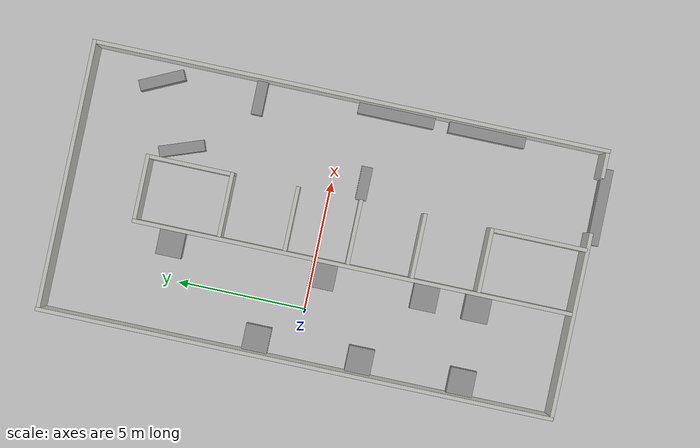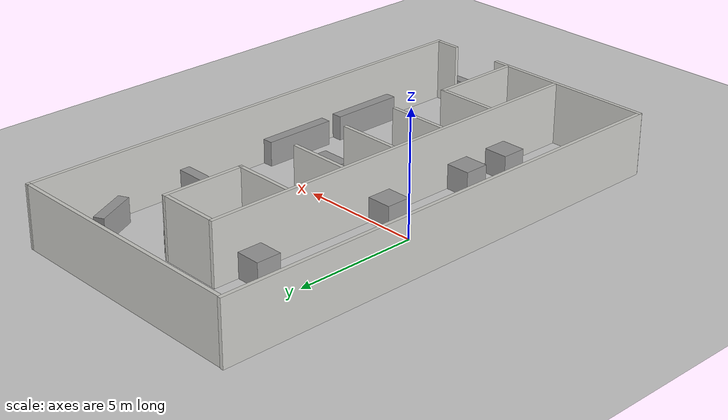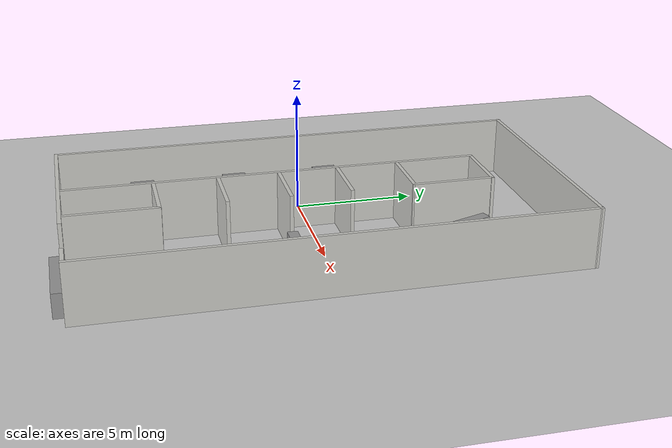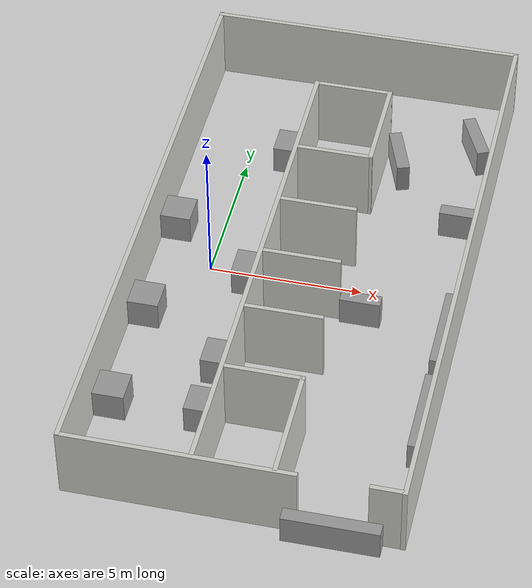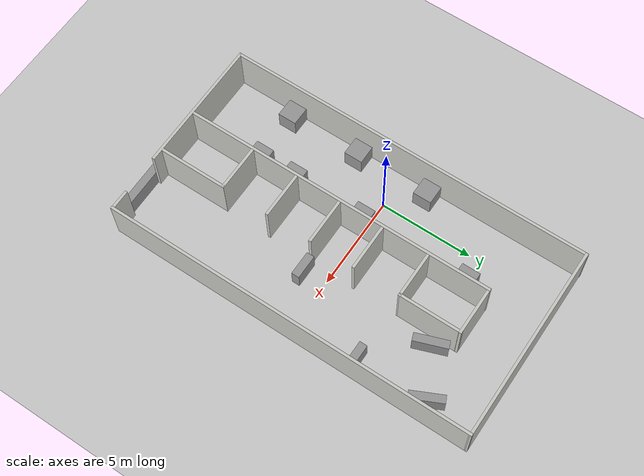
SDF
<sdf version="1.7">
 <world name="default">
  <light name="sun" type="directional">
   <pose>0 0 10 0 -0 0</pose>
   <diffuse>0.8 0.8 0.8 1</diffuse>
   <specular>0.2 0.2 0.2 1</specular>
   <attenuation>
    <range>1000</range>
    <constant>0.9</constant>
    <linear>0.01</linear>
    <quadratic>0.001</quadratic>
   </attenuation>
   <direction>-0.5 0.1 -0.9</direction>
   <spot><inner_angle>0</inner_angle><outer_angle>0</outer_angle><falloff>0</falloff></spot>
  </light>
  <model name="ground_plane">
   <static>1</static>
   <link name="link">
    <collision name="collision">
     <geometry><plane><normal>0 0 1</normal><size>100 100</size></plane></geometry>
     <surface>
      <contact><collide_bitmask>65535</collide_bitmask></contact>
      <friction><ode><mu>100</mu><mu2>50</mu2></ode></friction>
     </surface>
    </collision>
    <visual name="visual">
     <cast_shadows>0</cast_shadows>
     <geometry><plane><normal>0 0 1</normal><size>100 100</size></plane></geometry>
     <material>
      <script><uri>file://media/materials/scripts/gazebo.material</uri><name>Gazebo/Grey</name></script>
     </material>
    </visual>
   </link>
  </model>
  <gravity>0 0 -9.8</gravity>
  <magnetic_field>6e-06 2.3e-05 -4.2e-05</magnetic_field>
  <atmosphere type="adiabatic"/>
  <physics type="ode">
   <max_step_size>0.001</max_step_size>
   <real_time_factor>1</real_time_factor>
   <real_time_update_rate>1000</real_time_update_rate>
  </physics>
  <scene><ambient>0.4 0.4 0.4 1</ambient><background>0.7 0.7 0.7 1</background><shadows>1</shadows></scene>
  <audio><device>default</device></audio>
  <spherical_coordinates>
   <surface_model>EARTH_WGS84</surface_model>
   <latitude_deg>0</latitude_deg>
   <longitude_deg>0</longitude_deg>
   <elevation>0</elevation>
   <heading_deg>0</heading_deg>
  </spherical_coordinates>
  <model name="game_room">
   <pose>3.13909 -0.042829 0 0 -0 0</pose>
   <link name="Wall_14">
    <collision name="Wall_14_Collision">
     <geometry><box><size>20 0.15 2.5</size></box></geometry>
     <pose>0 0 1.25 0 -0 0</pose>
    </collision>
    <visual name="Wall_14_Visual">
     <pose>0 0 1.25 0 -0 0</pose>
     <geometry><box><size>20 0.15 2.5</size></box></geometry>
     <material>
      <script><uri>file://media/materials/scripts/gazebo.material</uri><name>Gazebo/CeilingTiled</name></script>
      <ambient>1 1 1 1</ambient>
     </material>
     <meta><layer>0</layer></meta>
    </visual>
    <pose>-5.16855 0.008499 0 0 -0 -1.5708</pose>
   </link>
   <link name="Wall_29">
    <collision name="Wall_29_Collision">
     <geometry><box><size>17 0.15 2.5</size></box></geometry>
     <pose>0 0 1.25 0 -0 0</pose>
    </collision>
    <visual name="Wall_29_Visual">
     <pose>0 0 1.25 0 -0 0</pose>
     <geometry><box><size>17 0.15 2.5</size></box></geometry>
     <material>
      <script><uri>file://media/materials/scripts/gazebo.material</uri><name>Gazebo/CeilingTiled</name></script>
      <ambient>1 1 1 1</ambient>
     </material>
     <meta><layer>0</layer></meta>
    </visual>
    <pose>-1.14655 -1.3685 0 0 -0 1.5708</pose>
   </link>
   <link name="Wall_31">
    <collision name="Wall_31_Collision">
     <geometry><box><size>2.5 0.15 2.5</size></box></geometry>
     <pose>0 0 1.25 0 -0 0</pose>
    </collision>
    <visual name="Wall_31_Visual">
     <pose>0 0 1.25 0 -0 0</pose>
     <geometry><box><size>2.5 0.15 2.5</size></box></geometry>
     <material>
      <script><uri>file://media/materials/scripts/gazebo.material</uri><name>Gazebo/CeilingTiled</name></script>
      <ambient>1 1 1 1</ambient>
     </material>
     <meta><layer>0</layer></meta>
    </visual>
    <pose>0.166446 -6.2425 0 0 -0 3.14159</pose>
   </link>
   <link name="Wall_33">
    <collision name="Wall_33_Collision">
     <geometry><box><size>2.5 0.15 2.5</size></box></geometry>
     <pose>0 0 1.25 0 -0 0</pose>
    </collision>
    <visual name="Wall_33_Visual">
     <pose>0 0 1.25 0 -0 0</pose>
     <geometry><box><size>2.5 0.15 2.5</size></box></geometry>
     <material>
      <script><uri>file://media/materials/scripts/gazebo.material</uri><name>Gazebo/CeilingTiled</name></script>
      <ambient>1 1 1 1</ambient>
     </material>
     <meta><layer>0</layer></meta>
    </visual>
    <pose>0.169446 -3.6585 0 0 -0 3.14159</pose>
   </link>
   <link name="Wall_35">
    <collision name="Wall_35_Collision">
     <geometry><box><size>2.5 0.15 2.5</size></box></geometry>
     <pose>0 0 1.25 0 -0 0</pose>
    </collision>
    <visual name="Wall_35_Visual">
     <pose>0 0 1.25 0 -0 0</pose>
     <geometry><box><size>2.5 0.15 2.5</size></box></geometry>
     <material>
      <script><uri>file://media/materials/scripts/gazebo.material</uri><name>Gazebo/CeilingTiled</name></script>
      <ambient>1 1 1 1</ambient>
     </material>
     <meta><layer>0</layer></meta>
    </visual>
    <pose>0.180446 -1.1755 0 0 -0 0</pose>
   </link>
   <link name="Wall_37">
    <collision name="Wall_37_Collision">
     <geometry><box><size>2.5 0.15 2.5</size></box></geometry>
     <pose>0 0 1.25 0 -0 0</pose>
    </collision>
    <visual name="Wall_37_Visual">
     <pose>0 0 1.25 0 -0 0</pose>
     <geometry><box><size>2.5 0.15 2.5</size></box></geometry>
     <material>
      <script><uri>file://media/materials/scripts/gazebo.material</uri><name>Gazebo/CeilingTiled</name></script>
      <ambient>1 1 1 1</ambient>
     </material>
     <meta><layer>0</layer></meta>
    </visual>
    <pose>0.171446 1.2535 0 0 -0 0</pose>
   </link>
   <link name="Wall_39">
    <collision name="Wall_39_Collision">
     <geometry><box><size>2.5 0.15 2.5</size></box></geometry>
     <pose>0 0 1.25 0 -0 0</pose>
    </collision>
    <visual name="Wall_39_Visual">
     <pose>0 0 1.25 0 -0 0</pose>
     <geometry><box><size>2.5 0.15 2.5</size></box></geometry>
     <material>
      <script><uri>file://media/materials/scripts/gazebo.material</uri><name>Gazebo/CeilingTiled</name></script>
      <ambient>1 1 1 1</ambient>
     </material>
     <meta><layer>0</layer></meta>
    </visual>
    <pose>0.174446 3.79326 0 0 -0 0.0002</pose>
   </link>
   <link name="Wall_43">
    <collision name="Wall_43_Collision">
     <geometry><box><size>3.75 0.15 2.5</size></box></geometry>
     <pose>0 0 1.25 0 -0 0</pose>
    </collision>
    <visual name="Wall_43_Visual">
     <pose>0 0 1.25 0 -0 0</pose>
     <geometry><box><size>3.75 0.15 2.5</size></box></geometry>
     <material>
      <script><uri>file://media/materials/scripts/gazebo.material</uri><name>Gazebo/CeilingTiled</name></script>
      <ambient>1 1 1 1</ambient>
     </material>
     <meta><layer>0</layer></meta>
    </visual>
    <pose>1.34145 -8.0495 0 0 -0 -1.5708</pose>
   </link>
   <link name="Wall_45">
    <collision name="Wall_45_Collision">
     <geometry><box><size>2.5 0.15 2.5</size></box></geometry>
     <pose>0 0 1.25 0 -0 0</pose>
    </collision>
    <visual name="Wall_45_Visual">
     <pose>0 0 1.25 0 -0 0</pose>
     <geometry><box><size>2.5 0.15 2.5</size></box></geometry>
     <material>
      <script><uri>file://media/materials/scripts/gazebo.material</uri><name>Gazebo/CeilingTiled</name></script>
      <ambient>1 1 1 1</ambient>
     </material>
     <meta><layer>0</layer></meta>
    </visual>
    <pose>0.179359 7.05532 0 0 -0 0.000156</pose>
   </link>
   <link name="Wall_50">
    <collision name="Wall_50_Collision">
     <geometry><box><size>10.4848 0.15 2.5</size></box></geometry>
     <pose>0 0 1.25 0 -0 0</pose>
    </collision>
    <visual name="Wall_50_Visual">
     <pose>0 0 1.25 0 -0 0</pose>
     <geometry><box><size>10.4848 0.15 2.5</size></box></geometry>
     <material>
      <script><uri>file://media/materials/scripts/gazebo.material</uri><name>Gazebo/CeilingTiled</name></script>
      <ambient>1 1 1 1</ambient>
     </material>
     <meta><layer>0</layer></meta>
    </visual>
    <pose>0.001064 9.919 0 0 -0 -3.14014</pose>
   </link>
   <link name="Wall_54">
    <collision name="Wall_54_Collision">
     <geometry><box><size>7.25 0.15 2.5</size></box></geometry>
     <pose>0 0 1.25 0 -0 0</pose>
    </collision>
    <visual name="Wall_54_Visual">
     <pose>0 0 1.25 0 -0 0</pose>
     <geometry><box><size>7.25 0.15 2.5</size></box></geometry>
     <material>
      <script><uri>file://media/materials/scripts/gazebo.material</uri><name>Gazebo/CeilingTiled</name></script>
      <ambient>1 1 1 1</ambient>
     </material>
     <meta><layer>0</layer></meta>
    </visual>
    <pose>-1.61255 -9.9335 0 0 -0 0</pose>
   </link>
   <link name="Wall_64">
    <collision name="Wall_64_Collision">
     <geometry><box><size>3.41211 0.15 2.5</size></box></geometry>
     <pose>0 0 1.25 0 -0 0</pose>
    </collision>
    <visual name="Wall_64_Visual">
     <pose>0 0 1.25 0 -0 0</pose>
     <geometry><box><size>3.41211 0.15 2.5</size></box></geometry>
     <material>
      <script><uri>file://media/materials/scripts/gazebo.material</uri><name>Gazebo/CeilingTiled</name></script>
      <ambient>1 1 1 1</ambient>
     </material>
     <meta><layer>0</layer></meta>
    </visual>
    <pose>1.35195 5.4245 0 0 -0 -1.57233</pose>
   </link>
   <link name="Wall_68">
    <collision name="Wall_68_Collision">
     <geometry><box><size>20 0.15 2.5</size></box></geometry>
     <pose>0 0 1.25 0 -0 0</pose>
    </collision>
    <visual name="Wall_68_Visual">
     <pose>0 0 1.25 0 -0 0</pose>
     <geometry><box><size>20 0.15 2.5</size></box></geometry>
     <material>
      <script><uri>file://media/materials/scripts/gazebo.material</uri><name>Gazebo/CeilingTiled</name></script>
      <ambient>1 1 1 1</ambient>
     </material>
     <meta><layer>0</layer></meta>
    </visual>
    <pose>5.16845 0.001499 0 0 -0 -1.5708</pose>
   </link>
   <link name="Wall_72">
    <collision name="Wall_72_Collision">
     <geometry><box><size>1 0.15 2.5</size></box></geometry>
     <pose>0 0 1.25 0 -0 0</pose>
    </collision>
    <visual name="Wall_72_Visual">
     <pose>0 0 1.25 0 -0 0</pose>
     <geometry><box><size>1 0.15 2.5</size></box></geometry>
     <material>
      <script><uri>file://media/materials/scripts/gazebo.material</uri><name>Gazebo/CeilingTiled</name></script>
      <ambient>1 1 1 1</ambient>
     </material>
     <meta><layer>0</layer></meta>
    </visual>
    <pose>4.61945 -9.9085 0 0 -0 0</pose>
   </link>
   <static>1</static>
  </model>
  <model name="unit_box">
   <pose>-1.45447 -6.45285 0.499995 0 -1e-05 -1.9e-05</pose>
   <link name="link">
    <inertial>
     <mass>1</mass>
     <inertia>
      <ixx>0.166667</ixx>
      <ixy>0</ixy>
      <ixz>0</ixz>
      <iyy>0.166667</iyy>
      <iyz>0</iyz>
      <izz>0.166667</izz>
     </inertia>
    </inertial>
    <collision name="collision"><geometry><box><size>1 1 1</size></box></geometry></collision>
    <visual name="visual">
     <geometry><box><size>1 1 1</size></box></geometry>
     <material>
      <script><name>Gazebo/Grey</name><uri>file://media/materials/scripts/gazebo.material</uri></script>
     </material>
    </visual>
   </link>
  </model>
  <model name="unit_box_clone">
   <pose>1.41204 -6.44415 0.499995 0 1e-05 0</pose>
   <link name="link">
    <inertial>
     <mass>1</mass>
     <inertia>
      <ixx>0.166667</ixx>
      <ixy>0</ixy>
      <ixz>0</ixz>
      <iyy>0.166667</iyy>
      <iyz>0</iyz>
      <izz>0.166667</izz>
     </inertia>
    </inertial>
    <collision name="collision"><geometry><box><size>1 1 1</size></box></geometry></collision>
    <visual name="visual">
     <geometry><box><size>1 1 1</size></box></geometry>
     <material>
      <script><name>Gazebo/Grey</name><uri>file://media/materials/scripts/gazebo.material</uri></script>
     </material>
    </visual>
   </link>
  </model>
  <model name="unit_box_clone_0_clone">
   <pose>1.41754 -4.40514 0.499995 0 1e-05 -3e-06</pose>
   <link name="link">
    <inertial>
     <mass>1</mass>
     <inertia>
      <ixx>0.166667</ixx>
      <ixy>0</ixy>
      <ixz>0</ixz>
      <iyy>0.166667</iyy>
      <iyz>0</iyz>
      <izz>0.166667</izz>
     </inertia>
    </inertial>
    <collision name="collision"><geometry><box><size>1 1 1</size></box></geometry></collision>
    <visual name="visual">
     <geometry><box><size>1 1 1</size></box></geometry>
     <material>
      <script><name>Gazebo/Grey</name><uri>file://media/materials/scripts/gazebo.material</uri></script>
     </material>
    </visual>
   </link>
  </model>
  <model name="unit_box_clone_0_clone_clone_clone">
   <pose>-1.45445 -2.46074 0.499995 -1e-05 -0 -1.5e-05</pose>
   <link name="link">
    <inertial>
     <mass>1</mass>
     <inertia>
      <ixx>0.166667</ixx>
      <ixy>0</ixy>
      <ixz>0</ixz>
      <iyy>0.166667</iyy>
      <iyz>0</iyz>
      <izz>0.166667</izz>
     </inertia>
    </inertial>
    <collision name="collision"><geometry><box><size>1 1 1</size></box></geometry></collision>
    <visual name="visual">
     <geometry><box><size>1 1 1</size></box></geometry>
     <material>
      <script><name>Gazebo/Grey</name><uri>file://media/materials/scripts/gazebo.material</uri></script>
     </material>
    </visual>
   </link>
  </model>
  <model name="unit_box_clone_0_clone_clone_clone_clone">
   <pose>1.41752 -0.399321 0.499995 0 -1e-05 -2e-06</pose>
   <link name="link">
    <inertial>
     <mass>1</mass>
     <inertia>
      <ixx>0.166667</ixx>
      <ixy>0</ixy>
      <ixz>0</ixz>
      <iyy>0.166667</iyy>
      <iyz>0</iyz>
      <izz>0.166667</izz>
     </inertia>
    </inertial>
    <collision name="collision"><geometry><box><size>1 1 1</size></box></geometry></collision>
    <visual name="visual">
     <geometry><box><size>1 1 1</size></box></geometry>
     <material>
      <script><name>Gazebo/Grey</name><uri>file://media/materials/scripts/gazebo.material</uri></script>
     </material>
    </visual>
   </link>
  </model>
  <model name="unit_box_clone_0_clone_clone_clone_clone_0">
   <pose>8.0199 -1.87773 0.499832 0.000113 -1e-06 0.000103</pose>
   <link name="link">
    <inertial>
     <mass>1</mass>
     <inertia>
      <ixx>0.166667</ixx>
      <ixy>0</ixy>
      <ixz>0</ixz>
      <iyy>0.166667</iyy>
      <iyz>0</iyz>
      <izz>0.166667</izz>
     </inertia>
    </inertial>
    <collision name="collision"><geometry><box><size>0.423503 2.97848 1</size></box></geometry></collision>
    <visual name="visual">
     <geometry><box><size>0.423503 2.97848 1</size></box></geometry>
     <material>
      <script><name>Gazebo/Grey</name><uri>file://media/materials/scripts/gazebo.material</uri></script>
     </material>
    </visual>
   </link>
  </model>
  <model name="unit_box_clone_0_clone_clone_clone_clone_0_clone">
   <pose>8.01956 -5.43444 0.499832 -0.000113 -1e-06 0.000108</pose>
   <link name="link">
    <inertial>
     <mass>1</mass>
     <inertia>
      <ixx>0.166667</ixx>
      <ixy>0</ixy>
      <ixz>0</ixz>
      <iyy>0.166667</iyy>
      <iyz>0</iyz>
      <izz>0.166667</izz>
     </inertia>
    </inertial>
    <collision name="collision"><geometry><box><size>0.423503 2.97848 1</size></box></geometry></collision>
    <visual name="visual">
     <geometry><box><size>0.423503 2.97848 1</size></box></geometry>
     <material>
      <script><name>Gazebo/Grey</name><uri>file://media/materials/scripts/gazebo.material</uri></script>
     </material>
    </visual>
   </link>
  </model>
  <model name="unit_box_clone_0_clone_clone_clone_clone_0_clone_0">
   <pose>7.58275 3.3879 0.5 0 -0 1.57079</pose>
   <link name="link">
    <inertial>
     <mass>1</mass>
     <inertia>
      <ixx>0.166667</ixx>
      <ixy>0</ixy>
      <ixz>0</ixz>
      <iyy>0.166667</iyy>
      <iyz>0</iyz>
      <izz>0.166667</izz>
     </inertia>
    </inertial>
    <collision name="collision"><geometry><box><size>0.423503 1.29961 1</size></box></geometry></collision>
    <visual name="visual">
     <geometry><box><size>0.423503 1.29961 1</size></box></geometry>
     <material>
      <script><name>Gazebo/Grey</name><uri>file://media/materials/scripts/gazebo.material</uri></script>
     </material>
    </visual>
   </link>
  </model>
  <model name="unit_box_clone_0_clone_clone_clone_clone_0_clone_0_clone">
   <pose>5.21936 -1.20721 0.5 0 -0 1.57102</pose>
   <link name="link">
    <inertial>
     <mass>1</mass>
     <inertia>
      <ixx>0.166667</ixx>
      <ixy>0</ixy>
      <ixz>0</ixz>
      <iyy>0.166667</iyy>
      <iyz>0</iyz>
      <izz>0.166667</izz>
     </inertia>
    </inertial>
    <collision name="collision"><geometry><box><size>0.423503 1.29961 1</size></box></geometry></collision>
    <visual name="visual">
     <geometry><box><size>0.423503 1.29961 1</size></box></geometry>
     <material>
      <script><name>Gazebo/Grey</name><uri>file://media/materials/scripts/gazebo.material</uri></script>
     </material>
    </visual>
   </link>
  </model>
  <model name="unit_box_clone_0_clone_clone_clone_clone_0_clone_clone">
   <pose>6.21995 -10.2572 0.499832 0.000113 -1e-06 -1.56487</pose>
   <link name="link">
    <inertial>
     <mass>1</mass>
     <inertia>
      <ixx>0.166667</ixx>
      <ixy>0</ixy>
      <ixz>0</ixz>
      <iyy>0.166667</iyy>
      <iyz>0</iyz>
      <izz>0.166667</izz>
     </inertia>
    </inertial>
    <collision name="collision"><geometry><box><size>0.423503 2.97848 1</size></box></geometry></collision>
    <visual name="visual">
     <geometry><box><size>0.423503 2.97848 1</size></box></geometry>
     <material>
      <script><name>Gazebo/Grey</name><uri>file://media/materials/scripts/gazebo.material</uri></script>
     </material>
    </visual>
   </link>
  </model>
  <model name="unit_box_clone_0_clone_clone_clone_clone_0_clone_1">
   <pose>7.47171 7.19558 0.5 0 -0 0.444529</pose>
   <link name="link">
    <inertial>
     <mass>1</mass>
     <inertia>
      <ixx>0.166667</ixx>
      <ixy>0</ixy>
      <ixz>0</ixz>
      <iyy>0.166667</iyy>
      <iyz>0</iyz>
      <izz>0.166667</izz>
     </inertia>
    </inertial>
    <collision name="collision"><geometry><box><size>0.423503 1.77253 1</size></box></geometry></collision>
    <visual name="visual">
     <geometry><box><size>0.423503 1.77253 1</size></box></geometry>
     <material>
      <script><name>Gazebo/Grey</name><uri>file://media/materials/scripts/gazebo.material</uri></script>
     </material>
    </visual>
   </link>
  </model>
  <model name="unit_box_clone_0_clone_clone_clone_clone_clone">
   <pose>-1.45444 1.58135 0.499995 -0 -1e-05 -1e-06</pose>
   <link name="link">
    <inertial>
     <mass>1</mass>
     <inertia>
      <ixx>0.166667</ixx>
      <ixy>0</ixy>
      <ixz>0</ixz>
      <iyy>0.166667</iyy>
      <iyz>0</iyz>
      <izz>0.166667</izz>
     </inertia>
    </inertial>
    <collision name="collision"><geometry><box><size>1 1 1</size></box></geometry></collision>
    <visual name="visual">
     <geometry><box><size>1 1 1</size></box></geometry>
     <material>
      <script><name>Gazebo/Grey</name><uri>file://media/materials/scripts/gazebo.material</uri></script>
     </material>
    </visual>
   </link>
  </model>
  <model name="unit_box_clone_0_clone_clone_clone_clone_0_clone_1_clone">
   <pose>5.07047 5.90979 0.499999 -2e-06 -0 0.347053</pose>
   <link name="link">
    <inertial>
     <mass>1</mass>
     <inertia>
      <ixx>0.166667</ixx>
      <ixy>0</ixy>
      <ixz>0</ixz>
      <iyy>0.166667</iyy>
      <iyz>0</iyz>
      <izz>0.166667</izz>
     </inertia>
    </inertial>
    <collision name="collision"><geometry><box><size>0.423503 1.77253 1</size></box></geometry></collision>
    <visual name="visual">
     <geometry><box><size>0.423503 1.77253 1</size></box></geometry>
     <material>
      <script><name>Gazebo/Grey</name><uri>file://media/materials/scripts/gazebo.material</uri></script>
     </material>
    </visual>
   </link>
  </model>
  <model name="unit_box_clone_0_clone_clone_clone_clone_1">
   <pose>1.41751 5.56434 0.499995 0 1e-05 -5e-06</pose>
   <link name="link">
    <inertial>
     <mass>1</mass>
     <inertia>
      <ixx>0.166667</ixx>
      <ixy>0</ixy>
      <ixz>0</ixz>
      <iyy>0.166667</iyy>
      <iyz>0</iyz>
      <izz>0.166667</izz>
     </inertia>
    </inertial>
    <collision name="collision"><geometry><box><size>1 1 1</size></box></geometry></collision>
    <visual name="visual">
     <geometry><box><size>1 1 1</size></box></geometry>
     <material>
      <script><name>Gazebo/Grey</name><uri>file://media/materials/scripts/gazebo.material</uri></script>
     </material>
    </visual>
   </link>
  </model>
 </world>
</sdf>
